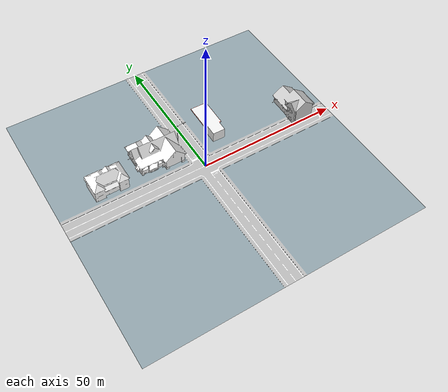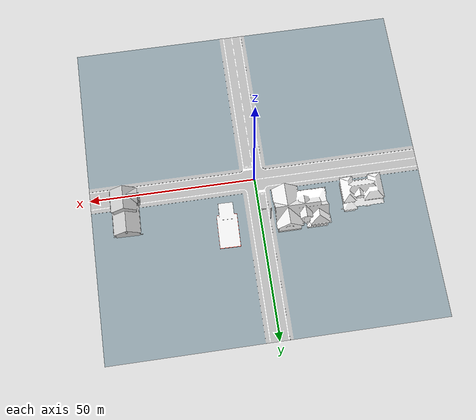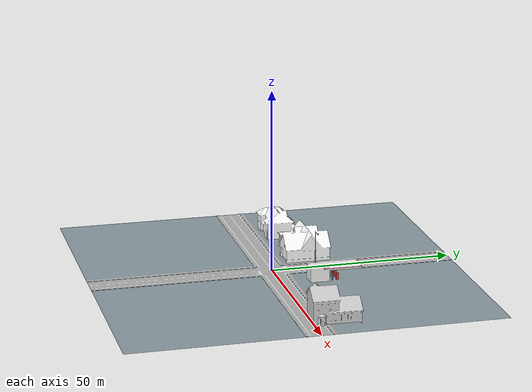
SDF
<sdf version="1.7">
 <world name="default">
  <scene>
   <grid>0</grid>
   <ambient>0.4 0.4 0.4 1</ambient>
   <background>0.7 0.7 0.7 1</background>
   <shadows>1</shadows>
  </scene>
  <light name="sun" type="directional">
   <pose>1.5 -30 100 0 -0 0</pose>
   <diffuse>0.8 0.8 0.8 1</diffuse>
   <specular>0.2 0.2 0.2 1</specular>
   <attenuation>
    <range>1000</range>
    <constant>0.9</constant>
    <linear>0.01</linear>
    <quadratic>0.001</quadratic>
   </attenuation>
   <direction>-0.5 0.1 -0.9</direction>
   <spot><inner_angle>0</inner_angle><outer_angle>0</outer_angle><falloff>0</falloff></spot>
  </light>
  <model name="House 1">
   <static>1</static>
   <link name="link">
    <collision name="collision">
     <geometry><mesh><uri>model://house_1/meshes/house_1.dae</uri><scale>1.5 1.5 1.5</scale></mesh></geometry>
    </collision>
    <visual name="visual">
     <geometry><mesh><uri>model://house_1/meshes/house_1.dae</uri><scale>1.5 1.5 1.5</scale></mesh></geometry>
     <material>
      <script>
       <uri>model://house_1/materials/scripts</uri>
       <uri>model://house_1/materials/textures</uri>
       <name>House_1/Diffuse</name>
      </script>
      <shader type="normal_map_tangent_space"><normal_map>House_1_Normal.png</normal_map></shader>
     </material>
    </visual>
   </link>
   <pose>-12 12 0 0 -0 0</pose>
  </model>
  <model name="House 2">
   <static>1</static>
   <link name="link">
    <collision name="collision">
     <geometry><mesh><uri>model://house_2/meshes/house_2.dae</uri><scale>1.5 1.5 1.5</scale></mesh></geometry>
    </collision>
    <visual name="visual">
     <geometry><mesh><uri>model://house_2/meshes/house_2.dae</uri><scale>1.5 1.5 1.5</scale></mesh></geometry>
     <material>
      <script>
       <uri>model://house_2/materials/scripts</uri>
       <uri>model://house_2/materials/textures</uri>
       <uri>model://house_1/materials/textures</uri>
       <name>House_2/Diffuse</name>
      </script>
      <shader type="normal_map_tangent_space">
       <normal_map>model://house_1/materials/textures/House_1_Normal.png</normal_map>
      </shader>
     </material>
    </visual>
   </link>
   <pose>-32 9 0 0 -0 0</pose>
  </model>
  <model name="House 3">
   <static>1</static>
   <link name="link">
    <collision name="collision">
     <geometry><mesh><uri>model://house_3/meshes/house_3.dae</uri><scale>1.5 1.5 1.5</scale></mesh></geometry>
    </collision>
    <visual name="visual">
     <geometry><mesh><uri>model://house_3/meshes/house_3.dae</uri><scale>1.5 1.5 1.5</scale></mesh></geometry>
     <material>
      <script>
       <uri>model://house_3/materials/scripts</uri>
       <uri>model://house_3/materials/textures</uri>
       <uri>model://house_1/materials/textures</uri>
       <name>House_3/Diffuse</name>
      </script>
      <shader type="normal_map_tangent_space">
       <normal_map>model://house_1/materials/textures/House_1_Normal.png</normal_map>
      </shader>
     </material>
    </visual>
   </link>
   <pose>39.4436 6.75542 0 0 -0 1.55</pose>
  </model>
  <model name="Gas Station">
   <static>1</static>
   <link name="link">
    <collision name="collision">
     <geometry><mesh><uri>model://gas_station/meshes/gas_station.dae</uri></mesh></geometry>
    </collision>
    <visual name="visual">
     <geometry><mesh><uri>model://gas_station/meshes/gas_station.dae</uri></mesh></geometry>
     <material>
      <script>
       <uri>model://gas_station/materials/scripts</uri>
       <uri>model://gas_station/materials/textures</uri>
       <name>GasStation/Diffuse</name>
      </script>
      <shader type="normal_map_tangent_space"><normal_map>GasStation_Normal.png</normal_map></shader>
     </material>
    </visual>
   </link>
   <pose>10 14 0 0 -0 1.55</pose>
  </model>
  <model name="Lamp Post">
   <static>1</static>
   <link name="link">
    <collision name="collision">
     <geometry><mesh><uri>model://lamp_post/meshes/lamp_post.dae</uri><scale>3 3 3</scale></mesh></geometry>
    </collision>
    <visual name="visual">
     <geometry><mesh><uri>model://lamp_post/meshes/lamp_post.dae</uri><scale>3 3 3</scale></mesh></geometry>
    </visual>
   </link>
   <pose>-3 13 0 0 -0 1.55</pose>
  </model>
  <model name="Lamp Post">
   <static>1</static>
   <link name="link">
    <collision name="collision">
     <geometry><mesh><uri>model://lamp_post/meshes/lamp_post.dae</uri><scale>3 3 3</scale></mesh></geometry>
    </collision>
    <visual name="visual">
     <geometry><mesh><uri>model://lamp_post/meshes/lamp_post.dae</uri><scale>3 3 3</scale></mesh></geometry>
    </visual>
   </link>
   <pose>-3 13 0 0 -0 1.55</pose>
  </model>
  <model name="Lamp Post">
   <static>1</static>
   <link name="link">
    <collision name="collision">
     <geometry><mesh><uri>model://lamp_post/meshes/lamp_post.dae</uri><scale>3 3 3</scale></mesh></geometry>
    </collision>
    <visual name="visual">
     <geometry><mesh><uri>model://lamp_post/meshes/lamp_post.dae</uri><scale>3 3 3</scale></mesh></geometry>
    </visual>
   </link>
   <pose>-3 13 0 0 -0 1.55</pose>
  </model>
  <model name="Lamp Post">
   <static>1</static>
   <link name="link">
    <collision name="collision">
     <geometry><mesh><uri>model://lamp_post/meshes/lamp_post.dae</uri><scale>3 3 3</scale></mesh></geometry>
    </collision>
    <visual name="visual">
     <geometry><mesh><uri>model://lamp_post/meshes/lamp_post.dae</uri><scale>3 3 3</scale></mesh></geometry>
    </visual>
   </link>
   <pose>-3 13 0 0 -0 1.55</pose>
  </model>
  <model name="Lamp Post">
   <static>1</static>
   <link name="link">
    <collision name="collision">
     <geometry><mesh><uri>model://lamp_post/meshes/lamp_post.dae</uri><scale>3 3 3</scale></mesh></geometry>
    </collision>
    <visual name="visual">
     <geometry><mesh><uri>model://lamp_post/meshes/lamp_post.dae</uri><scale>3 3 3</scale></mesh></geometry>
    </visual>
   </link>
   <pose>-3 13 0 0 -0 1.55</pose>
  </model>
  <model name="Lamp Post">
   <static>1</static>
   <link name="link">
    <collision name="collision">
     <geometry><mesh><uri>model://lamp_post/meshes/lamp_post.dae</uri><scale>3 3 3</scale></mesh></geometry>
    </collision>
    <visual name="visual">
     <geometry><mesh><uri>model://lamp_post/meshes/lamp_post.dae</uri><scale>3 3 3</scale></mesh></geometry>
    </visual>
   </link>
   <pose>-3 13 0 0 -0 1.55</pose>
  </model>
  <model name="Lamp Post">
   <static>1</static>
   <link name="link">
    <collision name="collision">
     <geometry><mesh><uri>model://lamp_post/meshes/lamp_post.dae</uri><scale>3 3 3</scale></mesh></geometry>
    </collision>
    <visual name="visual">
     <geometry><mesh><uri>model://lamp_post/meshes/lamp_post.dae</uri><scale>3 3 3</scale></mesh></geometry>
    </visual>
   </link>
   <pose>-3 13 0 0 -0 1.55</pose>
  </model>
  <model name="Lamp Post">
   <static>1</static>
   <link name="link">
    <collision name="collision">
     <geometry><mesh><uri>model://lamp_post/meshes/lamp_post.dae</uri><scale>3 3 3</scale></mesh></geometry>
    </collision>
    <visual name="visual">
     <geometry><mesh><uri>model://lamp_post/meshes/lamp_post.dae</uri><scale>3 3 3</scale></mesh></geometry>
    </visual>
   </link>
   <pose>-3 13 0 0 -0 1.55</pose>
  </model>
  <model name="Lamp Post">
   <static>1</static>
   <link name="link">
    <collision name="collision">
     <geometry><mesh><uri>model://lamp_post/meshes/lamp_post.dae</uri><scale>3 3 3</scale></mesh></geometry>
    </collision>
    <visual name="visual">
     <geometry><mesh><uri>model://lamp_post/meshes/lamp_post.dae</uri><scale>3 3 3</scale></mesh></geometry>
    </visual>
   </link>
   <pose>-3 13 0 0 -0 1.55</pose>
  </model>
  <model name="Lamp Post">
   <static>1</static>
   <link name="link">
    <collision name="collision">
     <geometry><mesh><uri>model://lamp_post/meshes/lamp_post.dae</uri><scale>3 3 3</scale></mesh></geometry>
    </collision>
    <visual name="visual">
     <geometry><mesh><uri>model://lamp_post/meshes/lamp_post.dae</uri><scale>3 3 3</scale></mesh></geometry>
    </visual>
   </link>
   <pose>-3 13 0 0 -0 1.55</pose>
  </model>
  <model name="Lamp Post">
   <static>1</static>
   <link name="link">
    <collision name="collision">
     <geometry><mesh><uri>model://lamp_post/meshes/lamp_post.dae</uri><scale>3 3 3</scale></mesh></geometry>
    </collision>
    <visual name="visual">
     <geometry><mesh><uri>model://lamp_post/meshes/lamp_post.dae</uri><scale>3 3 3</scale></mesh></geometry>
    </visual>
   </link>
   <pose>-3 13 0 0 -0 1.55</pose>
  </model>
  <model name="Lamp Post">
   <static>1</static>
   <link name="link">
    <collision name="collision">
     <geometry><mesh><uri>model://lamp_post/meshes/lamp_post.dae</uri><scale>3 3 3</scale></mesh></geometry>
    </collision>
    <visual name="visual">
     <geometry><mesh><uri>model://lamp_post/meshes/lamp_post.dae</uri><scale>3 3 3</scale></mesh></geometry>
    </visual>
   </link>
   <pose>-3 13 0 0 -0 1.55</pose>
  </model>
  <model name="Lamp Post">
   <static>1</static>
   <link name="link">
    <collision name="collision">
     <geometry><mesh><uri>model://lamp_post/meshes/lamp_post.dae</uri><scale>3 3 3</scale></mesh></geometry>
    </collision>
    <visual name="visual">
     <geometry><mesh><uri>model://lamp_post/meshes/lamp_post.dae</uri><scale>3 3 3</scale></mesh></geometry>
    </visual>
   </link>
   <pose>-3 13 0 0 -0 1.55</pose>
  </model>
  <model name="Lamp Post">
   <static>1</static>
   <link name="link">
    <collision name="collision">
     <geometry><mesh><uri>model://lamp_post/meshes/lamp_post.dae</uri><scale>3 3 3</scale></mesh></geometry>
    </collision>
    <visual name="visual">
     <geometry><mesh><uri>model://lamp_post/meshes/lamp_post.dae</uri><scale>3 3 3</scale></mesh></geometry>
    </visual>
   </link>
   <pose>-3 13 0 0 -0 1.55</pose>
  </model>
  <model name="stop">
   <static>1</static>
   <link name="link">
    <collision name="collision">
     <geometry><plane><normal>0 0 1</normal><size>100 100</size></plane></geometry>
    </collision>
    <visual name="visual"><geometry><mesh><uri>model://stopW/meshes/stop.dae</uri></mesh></geometry></visual>
   </link>
  </model>
  <gravity>0 0 -9.8</gravity>
  <magnetic_field>6e-06 2.3e-05 -4.2e-05</magnetic_field>
  <atmosphere type="adiabatic"/>
  <physics type="ode">
   <max_step_size>0.001</max_step_size>
   <real_time_factor>1</real_time_factor>
   <real_time_update_rate>1000</real_time_update_rate>
  </physics>
  <spherical_coordinates>
   <surface_model>EARTH_WGS84</surface_model>
   <latitude_deg>0</latitude_deg>
   <longitude_deg>0</longitude_deg>
   <elevation>0</elevation>
   <heading_deg>0</heading_deg>
  </spherical_coordinates>
 </world>
</sdf>
